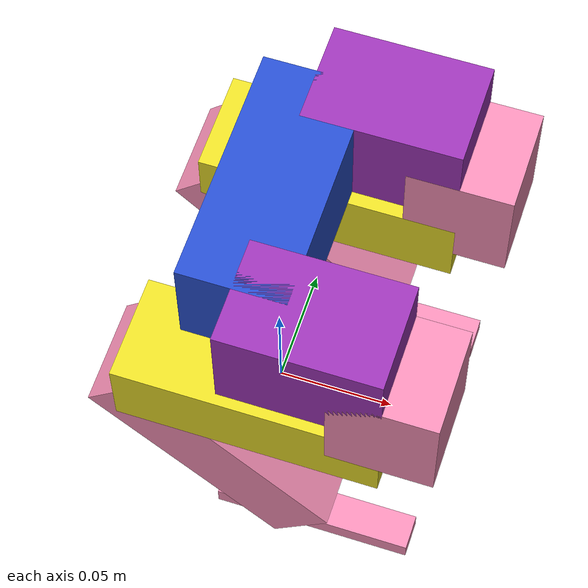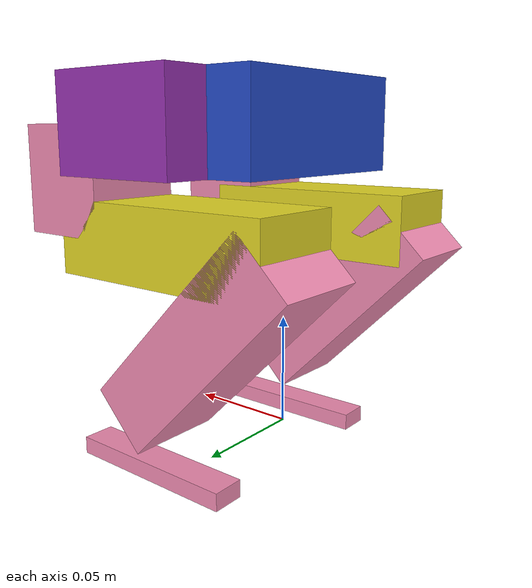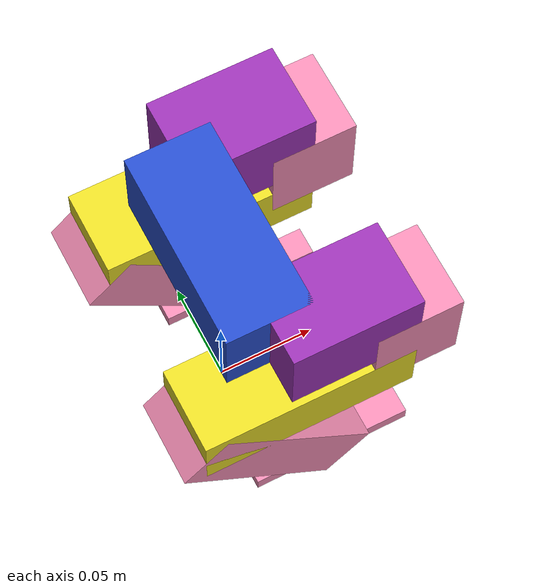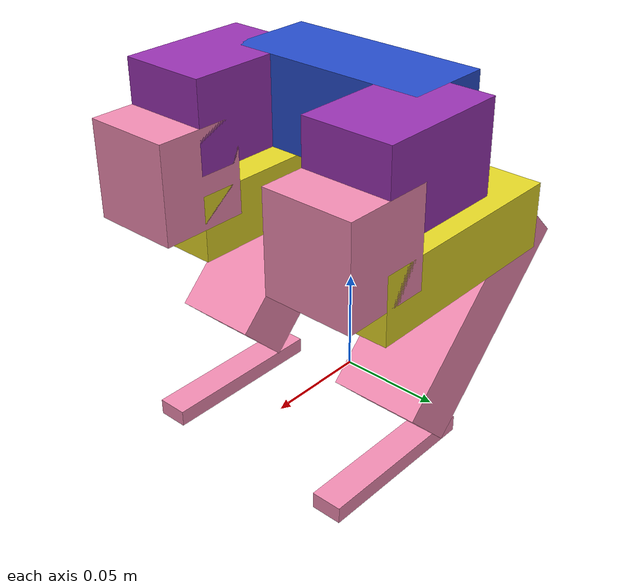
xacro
<?xml version="1.0"?>
<robot xmlns:xacro="http://www.ros.org/wiki/xacro">

    <!-- white, black, yellow, blue, pink, purple, orange -->

    <link name="base_link">
    </link>

    <joint name="chassis_joint" type="fixed">
        <parent link="base_link"/>
        <child link="chassis"/>
        <origin xyz="0 0 0.137326"/>
    </joint>

    <link name="chassis">
        <visual>
            <geometry>
                <box size="0.043 0.1 0.043"/>
            </geometry>
            <origin rpy="0 0 0" xyz="0 0 0"/>
            <material name="blue"/>
        </visual>
    </link>

    <joint name="J1_L" type="revolute">
        <parent link="chassis"/>
        <child link="L1_L"/>
        <origin rpy="0 0 0" xyz="0 0.05 0"/>
        <axis xyz="1 0 0"/>
        <limit effort="1000.0" lower="-${pi/4}" upper="${pi/2}" velocity="0.5"/>
    </joint>

    <link name="L1_L">
        <visual>
            <geometry>
                <box size="0.064 0.043 0.043"/>
            </geometry>
            <origin rpy="0 0 0" xyz="0.032 0 0"/>
            <material name="purple"/>
        </visual>
    </link>

    <joint name="J1_R" type="revolute">
        <parent link="chassis"/>
        <child link="L1_R"/>
        <origin rpy="0 0 0" xyz="0 -0.05 0"/>
        <axis xyz="1 0 0"/>
        <limit effort="1000.0" lower="-3.14" upper="3.14" velocity="0.5"/>
    </joint>

    <link name="L1_R">
        <visual>
            <geometry>
                <box size="0.064 0.043 0.043"/>
            </geometry>
            <origin rpy="0 0 0" xyz="0.032 0 0"/>
            <material name="purple"/>
        </visual>
    </link>

    <joint name="J2_L" type="revolute">
        <parent link="L1_L"/>
        <child link="L2_L"/>
        <origin rpy="0 0 0" xyz="0.064 0 0"/>
        <axis xyz="0 0 1"/>
        <limit effort="1000.0" lower="-3.14" upper="3.14" velocity="0.5"/>
    </joint>

    <link name="L2_L">
        <visual>
            <geometry>
                <box size="0.043 0.043 0.047"/>
            </geometry>
            <origin rpy="0 0 0" xyz="0 0 -0.0235"/>
            <material name="pink"/>
        </visual>
    </link>

    <joint name="J2_R" type="revolute">
        <parent link="L1_R"/>
        <child link="L2_R"/>
        <origin rpy="0 0 0" xyz="0.064 0 0"/>
        <axis xyz="0 0 1"/>
        <limit effort="1000.0" lower="-3.14" upper="3.14" velocity="0.5"/>
    </joint>

    <link name="L2_R">
        <visual>
            <geometry>
                <box size="0.043 0.043 0.047"/>
            </geometry>
            <origin rpy="0 0 0" xyz="0 0 -0.0235"/>
            <material name="pink"/>
        </visual>
    </link>

    <joint name="J3_L" type="revolute">
        <parent link="L2_L"/>
        <child link="L3_L"/>
        <origin rpy="0 0 0" xyz="0 0 -0.0235"/>
        <axis xyz="0 1 0"/>
        <limit effort="1000.0" lower="-3.14" upper="3.14" velocity="0.5"/>
    </joint>

    <link name="L3_L">
        <visual>
            <geometry>
                <box size="0.107 0.043 0.032"/>
            </geometry>
            <origin rpy="0 0 0" xyz="-0.0535 0 -0.0235"/>
            <material name="yellow"/>
        </visual>
    </link>

    <joint name="J3_R" type="revolute">
        <parent link="L2_R"/>
        <child link="L3_R"/>
        <origin rpy="0 0 0" xyz="0 0 -0.0235"/>
        <axis xyz="0 1 0"/>
        <limit effort="1000.0" lower="-3.14" upper="3.14" velocity="0.5"/>
    </joint>

    <link name="L3_R">
        <visual>
            <geometry>
                <box size="0.107 0.043 0.032"/>
            </geometry>
            <origin rpy="0 0 0" xyz="-0.0535 0 -0.0235"/>
            <material name="yellow"/>
        </visual>
    </link>

    <joint name="J4_L" type="revolute">
        <parent link="L3_L"/>
        <child link="L4_L"/>
        <origin rpy="0 0.7854 0" xyz="-0.107 0 -0.0235"/>
        <axis xyz="0 1 0"/>
        <limit effort="1000.0" lower="-3.14" upper="3.14" velocity="0.5"/>
    </joint>

    <link name="L4_L">
        <visual>
            <geometry>
                <box size="0.107 0.043 0.032"/>
            </geometry>
            <origin rpy="0 0 0" xyz="0.0535 0 0"/>
            <material name="pink"/>
        </visual>
    </link>

    <joint name="J4_R" type="revolute">
        <parent link="L3_R"/>
        <child link="L4_R"/>
        <origin rpy="0 0.7854 0" xyz="-0.107 0 -0.0235"/>
        <axis xyz="0 1 0"/>
        <limit effort="1000.0" lower="-3.14" upper="3.14" velocity="0.5"/>
    </joint>

    <link name="L4_R">
        <visual>
            <geometry>
                <box size="0.107 0.043 0.032"/>
            </geometry>
            <origin rpy="0 0 0" xyz="0.0535 0 0"/>
            <material name="pink"/>
        </visual>
    </link>

    <joint name="J5_L" type="revolute">
        <parent link="L4_L"/>
        <child link="L5_L"/>
        <origin rpy="0 -0.7854 0" xyz="0.107 0 0"/>
        <axis xyz="0 1 0"/>
        <limit effort="1000.0" lower="-3.14" upper="3.14" velocity="0.5"/>
    </joint>

    <link name="L5_L">
        <visual>
            <geometry>
                <box size="0.084 0.015 0.008"/>
            </geometry>
            <origin rpy="0 0 0" xyz="0 0 -0.0285"/>
            <material name="pink"/>
        </visual>
    </link>

    <joint name="J5_R" type="revolute">
        <parent link="L4_R"/>
        <child link="L5_R"/>
        <origin rpy="0 -0.7854 0" xyz="0.107 0 0"/>
        <axis xyz="0 1 0"/>
        <limit effort="1000.0" lower="-3.14" upper="3.14" velocity="0.5"/>
    </joint>

    <link name="L5_R">
        <visual>
            <geometry>
                <box size="0.084 0.015 0.008"/>
            </geometry>
            <origin rpy="0 0 0" xyz="0 0 -0.0285"/>
            <material name="pink"/>
        </visual>
    </link>

</robot>
